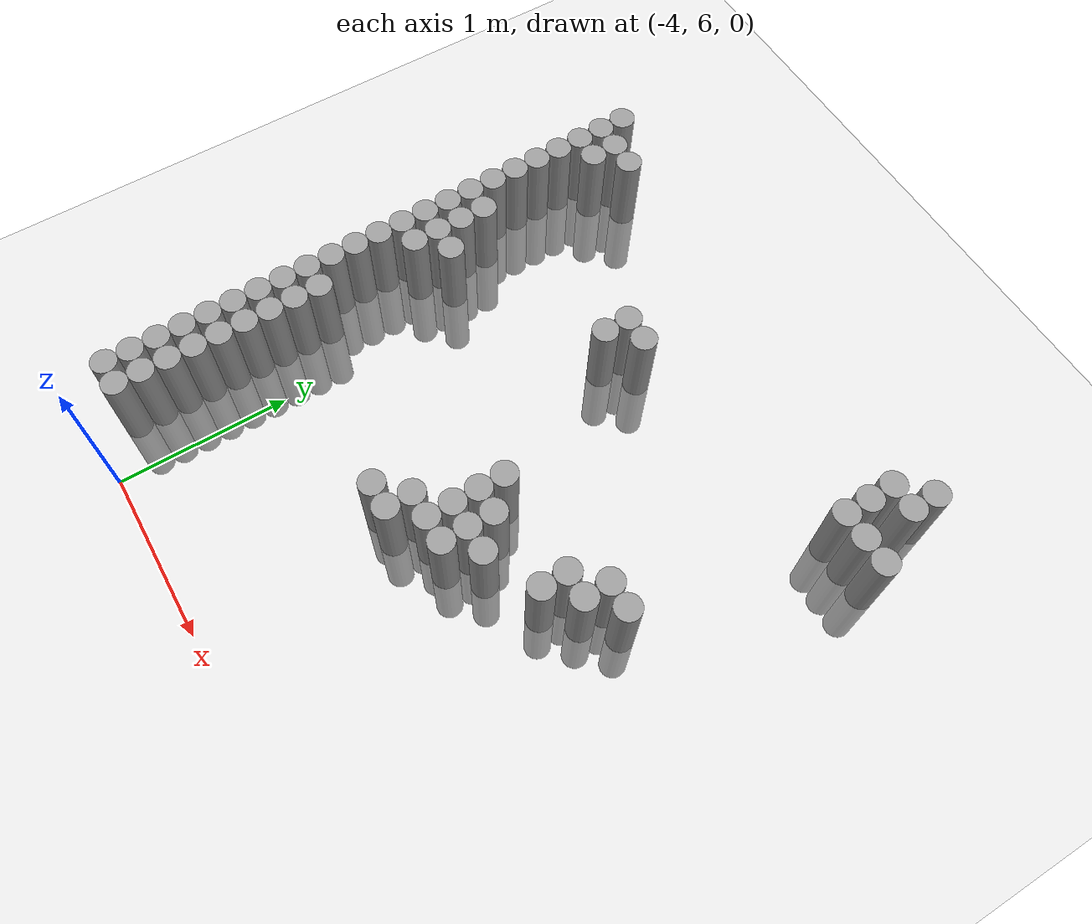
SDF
<sdf version="1.6">
 <world name="default">
  <model name="ground_plane">
   <static>1</static>
   <link name="link">
    <collision name="collision">
     <geometry><plane><normal>0 0 1</normal><size>100 100</size></plane></geometry>
     <surface><friction><ode><mu>100</mu><mu2>50</mu2></ode></friction></surface>
    </collision>
    <visual name="visual">
     <cast_shadows>0</cast_shadows>
     <geometry><plane><normal>0 0 1</normal><size>100 100</size></plane></geometry>
     <material>
      <script><uri>file://media/materials/scripts/gazebo.material</uri><name>Gazebo/Grey</name></script>
     </material>
    </visual>
   </link>
  </model>
  <model name="unit_cylinder_103">
   <pose>-4.425000 6.225000 0.000000 0.000000 0.000000 0.000000</pose>
   <link name="link">
    <inertial>
     <mass>1</mass>
     <inertia><ixx>0.145833</ixx><ixy>0</ixy><ixz>0</ixz><iyy>0.145833</iyy><iyz>0</iyz><izz>0.125</izz></inertia>
    </inertial>
    <collision name="collision">
     <geometry><cylinder><radius>0.075000</radius><length>1</length></cylinder></geometry>
    </collision>
    <visual name="visual">
     <geometry><cylinder><radius>0.075000</radius><length>1</length></cylinder></geometry>
     <material>
      <script><name>Gazebo/Grey</name><uri>file://media/materials/scripts/gazebo.material</uri></script>
     </material>
    </visual>
   </link>
  </model>
  <model name="unit_cylinder_104">
   <pose>-4.425000 6.375000 0.000000 0.000000 0.000000 0.000000</pose>
   <link name="link">
    <inertial>
     <mass>1</mass>
     <inertia><ixx>0.145833</ixx><ixy>0</ixy><ixz>0</ixz><iyy>0.145833</iyy><iyz>0</iyz><izz>0.125</izz></inertia>
    </inertial>
    <collision name="collision">
     <geometry><cylinder><radius>0.075000</radius><length>1</length></cylinder></geometry>
    </collision>
    <visual name="visual">
     <geometry><cylinder><radius>0.075000</radius><length>1</length></cylinder></geometry>
     <material>
      <script><name>Gazebo/Grey</name><uri>file://media/materials/scripts/gazebo.material</uri></script>
     </material>
    </visual>
   </link>
  </model>
  <model name="unit_cylinder_105">
   <pose>-4.425000 6.525000 0.000000 0.000000 0.000000 0.000000</pose>
   <link name="link">
    <inertial>
     <mass>1</mass>
     <inertia><ixx>0.145833</ixx><ixy>0</ixy><ixz>0</ixz><iyy>0.145833</iyy><iyz>0</iyz><izz>0.125</izz></inertia>
    </inertial>
    <collision name="collision">
     <geometry><cylinder><radius>0.075000</radius><length>1</length></cylinder></geometry>
    </collision>
    <visual name="visual">
     <geometry><cylinder><radius>0.075000</radius><length>1</length></cylinder></geometry>
     <material>
      <script><name>Gazebo/Grey</name><uri>file://media/materials/scripts/gazebo.material</uri></script>
     </material>
    </visual>
   </link>
  </model>
  <model name="unit_cylinder_106">
   <pose>-4.425000 6.675000 0.000000 0.000000 0.000000 0.000000</pose>
   <link name="link">
    <inertial>
     <mass>1</mass>
     <inertia><ixx>0.145833</ixx><ixy>0</ixy><ixz>0</ixz><iyy>0.145833</iyy><iyz>0</iyz><izz>0.125</izz></inertia>
    </inertial>
    <collision name="collision">
     <geometry><cylinder><radius>0.075000</radius><length>1</length></cylinder></geometry>
    </collision>
    <visual name="visual">
     <geometry><cylinder><radius>0.075000</radius><length>1</length></cylinder></geometry>
     <material>
      <script><name>Gazebo/Grey</name><uri>file://media/materials/scripts/gazebo.material</uri></script>
     </material>
    </visual>
   </link>
  </model>
  <model name="unit_cylinder_107">
   <pose>-4.425000 6.825000 0.000000 0.000000 0.000000 0.000000</pose>
   <link name="link">
    <inertial>
     <mass>1</mass>
     <inertia><ixx>0.145833</ixx><ixy>0</ixy><ixz>0</ixz><iyy>0.145833</iyy><iyz>0</iyz><izz>0.125</izz></inertia>
    </inertial>
    <collision name="collision">
     <geometry><cylinder><radius>0.075000</radius><length>1</length></cylinder></geometry>
    </collision>
    <visual name="visual">
     <geometry><cylinder><radius>0.075000</radius><length>1</length></cylinder></geometry>
     <material>
      <script><name>Gazebo/Grey</name><uri>file://media/materials/scripts/gazebo.material</uri></script>
     </material>
    </visual>
   </link>
  </model>
  <model name="unit_cylinder_108">
   <pose>-4.425000 6.975000 0.000000 0.000000 0.000000 0.000000</pose>
   <link name="link">
    <inertial>
     <mass>1</mass>
     <inertia><ixx>0.145833</ixx><ixy>0</ixy><ixz>0</ixz><iyy>0.145833</iyy><iyz>0</iyz><izz>0.125</izz></inertia>
    </inertial>
    <collision name="collision">
     <geometry><cylinder><radius>0.075000</radius><length>1</length></cylinder></geometry>
    </collision>
    <visual name="visual">
     <geometry><cylinder><radius>0.075000</radius><length>1</length></cylinder></geometry>
     <material>
      <script><name>Gazebo/Grey</name><uri>file://media/materials/scripts/gazebo.material</uri></script>
     </material>
    </visual>
   </link>
  </model>
  <model name="unit_cylinder_109">
   <pose>-4.425000 7.125000 0.000000 0.000000 0.000000 0.000000</pose>
   <link name="link">
    <inertial>
     <mass>1</mass>
     <inertia><ixx>0.145833</ixx><ixy>0</ixy><ixz>0</ixz><iyy>0.145833</iyy><iyz>0</iyz><izz>0.125</izz></inertia>
    </inertial>
    <collision name="collision">
     <geometry><cylinder><radius>0.075000</radius><length>1</length></cylinder></geometry>
    </collision>
    <visual name="visual">
     <geometry><cylinder><radius>0.075000</radius><length>1</length></cylinder></geometry>
     <material>
      <script><name>Gazebo/Grey</name><uri>file://media/materials/scripts/gazebo.material</uri></script>
     </material>
    </visual>
   </link>
  </model>
  <model name="unit_cylinder_110">
   <pose>-4.425000 7.275000 0.000000 0.000000 0.000000 0.000000</pose>
   <link name="link">
    <inertial>
     <mass>1</mass>
     <inertia><ixx>0.145833</ixx><ixy>0</ixy><ixz>0</ixz><iyy>0.145833</iyy><iyz>0</iyz><izz>0.125</izz></inertia>
    </inertial>
    <collision name="collision">
     <geometry><cylinder><radius>0.075000</radius><length>1</length></cylinder></geometry>
    </collision>
    <visual name="visual">
     <geometry><cylinder><radius>0.075000</radius><length>1</length></cylinder></geometry>
     <material>
      <script><name>Gazebo/Grey</name><uri>file://media/materials/scripts/gazebo.material</uri></script>
     </material>
    </visual>
   </link>
  </model>
  <model name="unit_cylinder_111">
   <pose>-4.425000 7.425000 0.000000 0.000000 0.000000 0.000000</pose>
   <link name="link">
    <inertial>
     <mass>1</mass>
     <inertia><ixx>0.145833</ixx><ixy>0</ixy><ixz>0</ixz><iyy>0.145833</iyy><iyz>0</iyz><izz>0.125</izz></inertia>
    </inertial>
    <collision name="collision">
     <geometry><cylinder><radius>0.075000</radius><length>1</length></cylinder></geometry>
    </collision>
    <visual name="visual">
     <geometry><cylinder><radius>0.075000</radius><length>1</length></cylinder></geometry>
     <material>
      <script><name>Gazebo/Grey</name><uri>file://media/materials/scripts/gazebo.material</uri></script>
     </material>
    </visual>
   </link>
  </model>
  <model name="unit_cylinder_112">
   <pose>-4.425000 7.575000 0.000000 0.000000 0.000000 0.000000</pose>
   <link name="link">
    <inertial>
     <mass>1</mass>
     <inertia><ixx>0.145833</ixx><ixy>0</ixy><ixz>0</ixz><iyy>0.145833</iyy><iyz>0</iyz><izz>0.125</izz></inertia>
    </inertial>
    <collision name="collision">
     <geometry><cylinder><radius>0.075000</radius><length>1</length></cylinder></geometry>
    </collision>
    <visual name="visual">
     <geometry><cylinder><radius>0.075000</radius><length>1</length></cylinder></geometry>
     <material>
      <script><name>Gazebo/Grey</name><uri>file://media/materials/scripts/gazebo.material</uri></script>
     </material>
    </visual>
   </link>
  </model>
  <model name="unit_cylinder_113">
   <pose>-4.425000 7.725000 0.000000 0.000000 0.000000 0.000000</pose>
   <link name="link">
    <inertial>
     <mass>1</mass>
     <inertia><ixx>0.145833</ixx><ixy>0</ixy><ixz>0</ixz><iyy>0.145833</iyy><iyz>0</iyz><izz>0.125</izz></inertia>
    </inertial>
    <collision name="collision">
     <geometry><cylinder><radius>0.075000</radius><length>1</length></cylinder></geometry>
    </collision>
    <visual name="visual">
     <geometry><cylinder><radius>0.075000</radius><length>1</length></cylinder></geometry>
     <material>
      <script><name>Gazebo/Grey</name><uri>file://media/materials/scripts/gazebo.material</uri></script>
     </material>
    </visual>
   </link>
  </model>
  <model name="unit_cylinder_114">
   <pose>-4.425000 7.875000 0.000000 0.000000 0.000000 0.000000</pose>
   <link name="link">
    <inertial>
     <mass>1</mass>
     <inertia><ixx>0.145833</ixx><ixy>0</ixy><ixz>0</ixz><iyy>0.145833</iyy><iyz>0</iyz><izz>0.125</izz></inertia>
    </inertial>
    <collision name="collision">
     <geometry><cylinder><radius>0.075000</radius><length>1</length></cylinder></geometry>
    </collision>
    <visual name="visual">
     <geometry><cylinder><radius>0.075000</radius><length>1</length></cylinder></geometry>
     <material>
      <script><name>Gazebo/Grey</name><uri>file://media/materials/scripts/gazebo.material</uri></script>
     </material>
    </visual>
   </link>
  </model>
  <model name="unit_cylinder_115">
   <pose>-4.425000 8.025000 0.000000 0.000000 0.000000 0.000000</pose>
   <link name="link">
    <inertial>
     <mass>1</mass>
     <inertia><ixx>0.145833</ixx><ixy>0</ixy><ixz>0</ixz><iyy>0.145833</iyy><iyz>0</iyz><izz>0.125</izz></inertia>
    </inertial>
    <collision name="collision">
     <geometry><cylinder><radius>0.075000</radius><length>1</length></cylinder></geometry>
    </collision>
    <visual name="visual">
     <geometry><cylinder><radius>0.075000</radius><length>1</length></cylinder></geometry>
     <material>
      <script><name>Gazebo/Grey</name><uri>file://media/materials/scripts/gazebo.material</uri></script>
     </material>
    </visual>
   </link>
  </model>
  <model name="unit_cylinder_116">
   <pose>-4.425000 8.175000 0.000000 0.000000 0.000000 0.000000</pose>
   <link name="link">
    <inertial>
     <mass>1</mass>
     <inertia><ixx>0.145833</ixx><ixy>0</ixy><ixz>0</ixz><iyy>0.145833</iyy><iyz>0</iyz><izz>0.125</izz></inertia>
    </inertial>
    <collision name="collision">
     <geometry><cylinder><radius>0.075000</radius><length>1</length></cylinder></geometry>
    </collision>
    <visual name="visual">
     <geometry><cylinder><radius>0.075000</radius><length>1</length></cylinder></geometry>
     <material>
      <script><name>Gazebo/Grey</name><uri>file://media/materials/scripts/gazebo.material</uri></script>
     </material>
    </visual>
   </link>
  </model>
  <model name="unit_cylinder_117">
   <pose>-4.425000 8.325000 0.000000 0.000000 0.000000 0.000000</pose>
   <link name="link">
    <inertial>
     <mass>1</mass>
     <inertia><ixx>0.145833</ixx><ixy>0</ixy><ixz>0</ixz><iyy>0.145833</iyy><iyz>0</iyz><izz>0.125</izz></inertia>
    </inertial>
    <collision name="collision">
     <geometry><cylinder><radius>0.075000</radius><length>1</length></cylinder></geometry>
    </collision>
    <visual name="visual">
     <geometry><cylinder><radius>0.075000</radius><length>1</length></cylinder></geometry>
     <material>
      <script><name>Gazebo/Grey</name><uri>file://media/materials/scripts/gazebo.material</uri></script>
     </material>
    </visual>
   </link>
  </model>
  <model name="unit_cylinder_118">
   <pose>-4.425000 8.475000 0.000000 0.000000 0.000000 0.000000</pose>
   <link name="link">
    <inertial>
     <mass>1</mass>
     <inertia><ixx>0.145833</ixx><ixy>0</ixy><ixz>0</ixz><iyy>0.145833</iyy><iyz>0</iyz><izz>0.125</izz></inertia>
    </inertial>
    <collision name="collision">
     <geometry><cylinder><radius>0.075000</radius><length>1</length></cylinder></geometry>
    </collision>
    <visual name="visual">
     <geometry><cylinder><radius>0.075000</radius><length>1</length></cylinder></geometry>
     <material>
      <script><name>Gazebo/Grey</name><uri>file://media/materials/scripts/gazebo.material</uri></script>
     </material>
    </visual>
   </link>
  </model>
  <model name="unit_cylinder_119">
   <pose>-4.425000 8.625000 0.000000 0.000000 0.000000 0.000000</pose>
   <link name="link">
    <inertial>
     <mass>1</mass>
     <inertia><ixx>0.145833</ixx><ixy>0</ixy><ixz>0</ixz><iyy>0.145833</iyy><iyz>0</iyz><izz>0.125</izz></inertia>
    </inertial>
    <collision name="collision">
     <geometry><cylinder><radius>0.075000</radius><length>1</length></cylinder></geometry>
    </collision>
    <visual name="visual">
     <geometry><cylinder><radius>0.075000</radius><length>1</length></cylinder></geometry>
     <material>
      <script><name>Gazebo/Grey</name><uri>file://media/materials/scripts/gazebo.material</uri></script>
     </material>
    </visual>
   </link>
  </model>
  <model name="unit_cylinder_120">
   <pose>-4.425000 8.775000 0.000000 0.000000 0.000000 0.000000</pose>
   <link name="link">
    <inertial>
     <mass>1</mass>
     <inertia><ixx>0.145833</ixx><ixy>0</ixy><ixz>0</ixz><iyy>0.145833</iyy><iyz>0</iyz><izz>0.125</izz></inertia>
    </inertial>
    <collision name="collision">
     <geometry><cylinder><radius>0.075000</radius><length>1</length></cylinder></geometry>
    </collision>
    <visual name="visual">
     <geometry><cylinder><radius>0.075000</radius><length>1</length></cylinder></geometry>
     <material>
      <script><name>Gazebo/Grey</name><uri>file://media/materials/scripts/gazebo.material</uri></script>
     </material>
    </visual>
   </link>
  </model>
  <model name="unit_cylinder_121">
   <pose>-4.425000 8.925000 0.000000 0.000000 0.000000 0.000000</pose>
   <link name="link">
    <inertial>
     <mass>1</mass>
     <inertia><ixx>0.145833</ixx><ixy>0</ixy><ixz>0</ixz><iyy>0.145833</iyy><iyz>0</iyz><izz>0.125</izz></inertia>
    </inertial>
    <collision name="collision">
     <geometry><cylinder><radius>0.075000</radius><length>1</length></cylinder></geometry>
    </collision>
    <visual name="visual">
     <geometry><cylinder><radius>0.075000</radius><length>1</length></cylinder></geometry>
     <material>
      <script><name>Gazebo/Grey</name><uri>file://media/materials/scripts/gazebo.material</uri></script>
     </material>
    </visual>
   </link>
  </model>
  <model name="unit_cylinder_122">
   <pose>-4.425000 9.075000 0.000000 0.000000 0.000000 0.000000</pose>
   <link name="link">
    <inertial>
     <mass>1</mass>
     <inertia><ixx>0.145833</ixx><ixy>0</ixy><ixz>0</ixz><iyy>0.145833</iyy><iyz>0</iyz><izz>0.125</izz></inertia>
    </inertial>
    <collision name="collision">
     <geometry><cylinder><radius>0.075000</radius><length>1</length></cylinder></geometry>
    </collision>
    <visual name="visual">
     <geometry><cylinder><radius>0.075000</radius><length>1</length></cylinder></geometry>
     <material>
      <script><name>Gazebo/Grey</name><uri>file://media/materials/scripts/gazebo.material</uri></script>
     </material>
    </visual>
   </link>
  </model>
  <model name="unit_cylinder_123">
   <pose>-4.425000 9.225000 0.000000 0.000000 0.000000 0.000000</pose>
   <link name="link">
    <inertial>
     <mass>1</mass>
     <inertia><ixx>0.145833</ixx><ixy>0</ixy><ixz>0</ixz><iyy>0.145833</iyy><iyz>0</iyz><izz>0.125</izz></inertia>
    </inertial>
    <collision name="collision">
     <geometry><cylinder><radius>0.075000</radius><length>1</length></cylinder></geometry>
    </collision>
    <visual name="visual">
     <geometry><cylinder><radius>0.075000</radius><length>1</length></cylinder></geometry>
     <material>
      <script><name>Gazebo/Grey</name><uri>file://media/materials/scripts/gazebo.material</uri></script>
     </material>
    </visual>
   </link>
  </model>
  <model name="unit_cylinder_124">
   <pose>-4.425000 9.375000 0.000000 0.000000 0.000000 0.000000</pose>
   <link name="link">
    <inertial>
     <mass>1</mass>
     <inertia><ixx>0.145833</ixx><ixy>0</ixy><ixz>0</ixz><iyy>0.145833</iyy><iyz>0</iyz><izz>0.125</izz></inertia>
    </inertial>
    <collision name="collision">
     <geometry><cylinder><radius>0.075000</radius><length>1</length></cylinder></geometry>
    </collision>
    <visual name="visual">
     <geometry><cylinder><radius>0.075000</radius><length>1</length></cylinder></geometry>
     <material>
      <script><name>Gazebo/Grey</name><uri>file://media/materials/scripts/gazebo.material</uri></script>
     </material>
    </visual>
   </link>
  </model>
  <model name="unit_cylinder_125">
   <pose>-4.425000 9.525000 0.000000 0.000000 0.000000 0.000000</pose>
   <link name="link">
    <inertial>
     <mass>1</mass>
     <inertia><ixx>0.145833</ixx><ixy>0</ixy><ixz>0</ixz><iyy>0.145833</iyy><iyz>0</iyz><izz>0.125</izz></inertia>
    </inertial>
    <collision name="collision">
     <geometry><cylinder><radius>0.075000</radius><length>1</length></cylinder></geometry>
    </collision>
    <visual name="visual">
     <geometry><cylinder><radius>0.075000</radius><length>1</length></cylinder></geometry>
     <material>
      <script><name>Gazebo/Grey</name><uri>file://media/materials/scripts/gazebo.material</uri></script>
     </material>
    </visual>
   </link>
  </model>
  <model name="unit_cylinder_129">
   <pose>-4.275000 6.225000 0.000000 0.000000 0.000000 0.000000</pose>
   <link name="link">
    <inertial>
     <mass>1</mass>
     <inertia><ixx>0.145833</ixx><ixy>0</ixy><ixz>0</ixz><iyy>0.145833</iyy><iyz>0</iyz><izz>0.125</izz></inertia>
    </inertial>
    <collision name="collision">
     <geometry><cylinder><radius>0.075000</radius><length>1</length></cylinder></geometry>
    </collision>
    <visual name="visual">
     <geometry><cylinder><radius>0.075000</radius><length>1</length></cylinder></geometry>
     <material>
      <script><name>Gazebo/Grey</name><uri>file://media/materials/scripts/gazebo.material</uri></script>
     </material>
    </visual>
   </link>
  </model>
  <model name="unit_cylinder_130">
   <pose>-4.275000 6.375000 0.000000 0.000000 0.000000 0.000000</pose>
   <link name="link">
    <inertial>
     <mass>1</mass>
     <inertia><ixx>0.145833</ixx><ixy>0</ixy><ixz>0</ixz><iyy>0.145833</iyy><iyz>0</iyz><izz>0.125</izz></inertia>
    </inertial>
    <collision name="collision">
     <geometry><cylinder><radius>0.075000</radius><length>1</length></cylinder></geometry>
    </collision>
    <visual name="visual">
     <geometry><cylinder><radius>0.075000</radius><length>1</length></cylinder></geometry>
     <material>
      <script><name>Gazebo/Grey</name><uri>file://media/materials/scripts/gazebo.material</uri></script>
     </material>
    </visual>
   </link>
  </model>
  <model name="unit_cylinder_131">
   <pose>-4.275000 6.525000 0.000000 0.000000 0.000000 0.000000</pose>
   <link name="link">
    <inertial>
     <mass>1</mass>
     <inertia><ixx>0.145833</ixx><ixy>0</ixy><ixz>0</ixz><iyy>0.145833</iyy><iyz>0</iyz><izz>0.125</izz></inertia>
    </inertial>
    <collision name="collision">
     <geometry><cylinder><radius>0.075000</radius><length>1</length></cylinder></geometry>
    </collision>
    <visual name="visual">
     <geometry><cylinder><radius>0.075000</radius><length>1</length></cylinder></geometry>
     <material>
      <script><name>Gazebo/Grey</name><uri>file://media/materials/scripts/gazebo.material</uri></script>
     </material>
    </visual>
   </link>
  </model>
  <model name="unit_cylinder_132">
   <pose>-4.275000 6.675000 0.000000 0.000000 0.000000 0.000000</pose>
   <link name="link">
    <inertial>
     <mass>1</mass>
     <inertia><ixx>0.145833</ixx><ixy>0</ixy><ixz>0</ixz><iyy>0.145833</iyy><iyz>0</iyz><izz>0.125</izz></inertia>
    </inertial>
    <collision name="collision">
     <geometry><cylinder><radius>0.075000</radius><length>1</length></cylinder></geometry>
    </collision>
    <visual name="visual">
     <geometry><cylinder><radius>0.075000</radius><length>1</length></cylinder></geometry>
     <material>
      <script><name>Gazebo/Grey</name><uri>file://media/materials/scripts/gazebo.material</uri></script>
     </material>
    </visual>
   </link>
  </model>
  <model name="unit_cylinder_133">
   <pose>-4.275000 6.825000 0.000000 0.000000 0.000000 0.000000</pose>
   <link name="link">
    <inertial>
     <mass>1</mass>
     <inertia><ixx>0.145833</ixx><ixy>0</ixy><ixz>0</ixz><iyy>0.145833</iyy><iyz>0</iyz><izz>0.125</izz></inertia>
    </inertial>
    <collision name="collision">
     <geometry><cylinder><radius>0.075000</radius><length>1</length></cylinder></geometry>
    </collision>
    <visual name="visual">
     <geometry><cylinder><radius>0.075000</radius><length>1</length></cylinder></geometry>
     <material>
      <script><name>Gazebo/Grey</name><uri>file://media/materials/scripts/gazebo.material</uri></script>
     </material>
    </visual>
   </link>
  </model>
  <model name="unit_cylinder_134">
   <pose>-4.275000 6.975000 0.000000 0.000000 0.000000 0.000000</pose>
   <link name="link">
    <inertial>
     <mass>1</mass>
     <inertia><ixx>0.145833</ixx><ixy>0</ixy><ixz>0</ixz><iyy>0.145833</iyy><iyz>0</iyz><izz>0.125</izz></inertia>
    </inertial>
    <collision name="collision">
     <geometry><cylinder><radius>0.075000</radius><length>1</length></cylinder></geometry>
    </collision>
    <visual name="visual">
     <geometry><cylinder><radius>0.075000</radius><length>1</length></cylinder></geometry>
     <material>
      <script><name>Gazebo/Grey</name><uri>file://media/materials/scripts/gazebo.material</uri></script>
     </material>
    </visual>
   </link>
  </model>
  <model name="unit_cylinder_135">
   <pose>-4.275000 7.125000 0.000000 0.000000 0.000000 0.000000</pose>
   <link name="link">
    <inertial>
     <mass>1</mass>
     <inertia><ixx>0.145833</ixx><ixy>0</ixy><ixz>0</ixz><iyy>0.145833</iyy><iyz>0</iyz><izz>0.125</izz></inertia>
    </inertial>
    <collision name="collision">
     <geometry><cylinder><radius>0.075000</radius><length>1</length></cylinder></geometry>
    </collision>
    <visual name="visual">
     <geometry><cylinder><radius>0.075000</radius><length>1</length></cylinder></geometry>
     <material>
      <script><name>Gazebo/Grey</name><uri>file://media/materials/scripts/gazebo.material</uri></script>
     </material>
    </visual>
   </link>
  </model>
  <model name="unit_cylinder_136">
   <pose>-4.275000 7.275000 0.000000 0.000000 0.000000 0.000000</pose>
   <link name="link">
    <inertial>
     <mass>1</mass>
     <inertia><ixx>0.145833</ixx><ixy>0</ixy><ixz>0</ixz><iyy>0.145833</iyy><iyz>0</iyz><izz>0.125</izz></inertia>
    </inertial>
    <collision name="collision">
     <geometry><cylinder><radius>0.075000</radius><length>1</length></cylinder></geometry>
    </collision>
    <visual name="visual">
     <geometry><cylinder><radius>0.075000</radius><length>1</length></cylinder></geometry>
     <material>
      <script><name>Gazebo/Grey</name><uri>file://media/materials/scripts/gazebo.material</uri></script>
     </material>
    </visual>
   </link>
  </model>
  <model name="unit_cylinder_137">
   <pose>-4.275000 7.425000 0.000000 0.000000 0.000000 0.000000</pose>
   <link name="link">
    <inertial>
     <mass>1</mass>
     <inertia><ixx>0.145833</ixx><ixy>0</ixy><ixz>0</ixz><iyy>0.145833</iyy><iyz>0</iyz><izz>0.125</izz></inertia>
    </inertial>
    <collision name="collision">
     <geometry><cylinder><radius>0.075000</radius><length>1</length></cylinder></geometry>
    </collision>
    <visual name="visual">
     <geometry><cylinder><radius>0.075000</radius><length>1</length></cylinder></geometry>
     <material>
      <script><name>Gazebo/Grey</name><uri>file://media/materials/scripts/gazebo.material</uri></script>
     </material>
    </visual>
   </link>
  </model>
  <model name="unit_cylinder_138">
   <pose>-4.275000 8.025000 0.000000 0.000000 0.000000 0.000000</pose>
   <link name="link">
    <inertial>
     <mass>1</mass>
     <inertia><ixx>0.145833</ixx><ixy>0</ixy><ixz>0</ixz><iyy>0.145833</iyy><iyz>0</iyz><izz>0.125</izz></inertia>
    </inertial>
    <collision name="collision">
     <geometry><cylinder><radius>0.075000</radius><length>1</length></cylinder></geometry>
    </collision>
    <visual name="visual">
     <geometry><cylinder><radius>0.075000</radius><length>1</length></cylinder></geometry>
     <material>
      <script><name>Gazebo/Grey</name><uri>file://media/materials/scripts/gazebo.material</uri></script>
     </material>
    </visual>
   </link>
  </model>
  <model name="unit_cylinder_139">
   <pose>-4.275000 8.175000 0.000000 0.000000 0.000000 0.000000</pose>
   <link name="link">
    <inertial>
     <mass>1</mass>
     <inertia><ixx>0.145833</ixx><ixy>0</ixy><ixz>0</ixz><iyy>0.145833</iyy><iyz>0</iyz><izz>0.125</izz></inertia>
    </inertial>
    <collision name="collision">
     <geometry><cylinder><radius>0.075000</radius><length>1</length></cylinder></geometry>
    </collision>
    <visual name="visual">
     <geometry><cylinder><radius>0.075000</radius><length>1</length></cylinder></geometry>
     <material>
      <script><name>Gazebo/Grey</name><uri>file://media/materials/scripts/gazebo.material</uri></script>
     </material>
    </visual>
   </link>
  </model>
  <model name="unit_cylinder_140">
   <pose>-4.275000 8.325000 0.000000 0.000000 0.000000 0.000000</pose>
   <link name="link">
    <inertial>
     <mass>1</mass>
     <inertia><ixx>0.145833</ixx><ixy>0</ixy><ixz>0</ixz><iyy>0.145833</iyy><iyz>0</iyz><izz>0.125</izz></inertia>
    </inertial>
    <collision name="collision">
     <geometry><cylinder><radius>0.075000</radius><length>1</length></cylinder></geometry>
    </collision>
    <visual name="visual">
     <geometry><cylinder><radius>0.075000</radius><length>1</length></cylinder></geometry>
     <material>
      <script><name>Gazebo/Grey</name><uri>file://media/materials/scripts/gazebo.material</uri></script>
     </material>
    </visual>
   </link>
  </model>
  <model name="unit_cylinder_141">
   <pose>-4.275000 8.475000 0.000000 0.000000 0.000000 0.000000</pose>
   <link name="link">
    <inertial>
     <mass>1</mass>
     <inertia><ixx>0.145833</ixx><ixy>0</ixy><ixz>0</ixz><iyy>0.145833</iyy><iyz>0</iyz><izz>0.125</izz></inertia>
    </inertial>
    <collision name="collision">
     <geometry><cylinder><radius>0.075000</radius><length>1</length></cylinder></geometry>
    </collision>
    <visual name="visual">
     <geometry><cylinder><radius>0.075000</radius><length>1</length></cylinder></geometry>
     <material>
      <script><name>Gazebo/Grey</name><uri>file://media/materials/scripts/gazebo.material</uri></script>
     </material>
    </visual>
   </link>
  </model>
  <model name="unit_cylinder_142">
   <pose>-4.275000 9.225000 0.000000 0.000000 0.000000 0.000000</pose>
   <link name="link">
    <inertial>
     <mass>1</mass>
     <inertia><ixx>0.145833</ixx><ixy>0</ixy><ixz>0</ixz><iyy>0.145833</iyy><iyz>0</iyz><izz>0.125</izz></inertia>
    </inertial>
    <collision name="collision">
     <geometry><cylinder><radius>0.075000</radius><length>1</length></cylinder></geometry>
    </collision>
    <visual name="visual">
     <geometry><cylinder><radius>0.075000</radius><length>1</length></cylinder></geometry>
     <material>
      <script><name>Gazebo/Grey</name><uri>file://media/materials/scripts/gazebo.material</uri></script>
     </material>
    </visual>
   </link>
  </model>
  <model name="unit_cylinder_143">
   <pose>-4.275000 9.375000 0.000000 0.000000 0.000000 0.000000</pose>
   <link name="link">
    <inertial>
     <mass>1</mass>
     <inertia><ixx>0.145833</ixx><ixy>0</ixy><ixz>0</ixz><iyy>0.145833</iyy><iyz>0</iyz><izz>0.125</izz></inertia>
    </inertial>
    <collision name="collision">
     <geometry><cylinder><radius>0.075000</radius><length>1</length></cylinder></geometry>
    </collision>
    <visual name="visual">
     <geometry><cylinder><radius>0.075000</radius><length>1</length></cylinder></geometry>
     <material>
      <script><name>Gazebo/Grey</name><uri>file://media/materials/scripts/gazebo.material</uri></script>
     </material>
    </visual>
   </link>
  </model>
  <model name="unit_cylinder_149">
   <pose>-4.125000 8.175000 0.000000 0.000000 0.000000 0.000000</pose>
   <link name="link">
    <inertial>
     <mass>1</mass>
     <inertia><ixx>0.145833</ixx><ixy>0</ixy><ixz>0</ixz><iyy>0.145833</iyy><iyz>0</iyz><izz>0.125</izz></inertia>
    </inertial>
    <collision name="collision">
     <geometry><cylinder><radius>0.075000</radius><length>1</length></cylinder></geometry>
    </collision>
    <visual name="visual">
     <geometry><cylinder><radius>0.075000</radius><length>1</length></cylinder></geometry>
     <material>
      <script><name>Gazebo/Grey</name><uri>file://media/materials/scripts/gazebo.material</uri></script>
     </material>
    </visual>
   </link>
  </model>
  <model name="unit_cylinder_150">
   <pose>-4.125000 9.375000 0.000000 0.000000 0.000000 0.000000</pose>
   <link name="link">
    <inertial>
     <mass>1</mass>
     <inertia><ixx>0.145833</ixx><ixy>0</ixy><ixz>0</ixz><iyy>0.145833</iyy><iyz>0</iyz><izz>0.125</izz></inertia>
    </inertial>
    <collision name="collision">
     <geometry><cylinder><radius>0.075000</radius><length>1</length></cylinder></geometry>
    </collision>
    <visual name="visual">
     <geometry><cylinder><radius>0.075000</radius><length>1</length></cylinder></geometry>
     <material>
      <script><name>Gazebo/Grey</name><uri>file://media/materials/scripts/gazebo.material</uri></script>
     </material>
    </visual>
   </link>
  </model>
  <model name="unit_cylinder_159">
   <pose>-3.225000 8.625000 0.000000 0.000000 0.000000 0.000000</pose>
   <link name="link">
    <inertial>
     <mass>1</mass>
     <inertia><ixx>0.145833</ixx><ixy>0</ixy><ixz>0</ixz><iyy>0.145833</iyy><iyz>0</iyz><izz>0.125</izz></inertia>
    </inertial>
    <collision name="collision">
     <geometry><cylinder><radius>0.075000</radius><length>1</length></cylinder></geometry>
    </collision>
    <visual name="visual">
     <geometry><cylinder><radius>0.075000</radius><length>1</length></cylinder></geometry>
     <material>
      <script><name>Gazebo/Grey</name><uri>file://media/materials/scripts/gazebo.material</uri></script>
     </material>
    </visual>
   </link>
  </model>
  <model name="unit_cylinder_160">
   <pose>-3.225000 8.775000 0.000000 0.000000 0.000000 0.000000</pose>
   <link name="link">
    <inertial>
     <mass>1</mass>
     <inertia><ixx>0.145833</ixx><ixy>0</ixy><ixz>0</ixz><iyy>0.145833</iyy><iyz>0</iyz><izz>0.125</izz></inertia>
    </inertial>
    <collision name="collision">
     <geometry><cylinder><radius>0.075000</radius><length>1</length></cylinder></geometry>
    </collision>
    <visual name="visual">
     <geometry><cylinder><radius>0.075000</radius><length>1</length></cylinder></geometry>
     <material>
      <script><name>Gazebo/Grey</name><uri>file://media/materials/scripts/gazebo.material</uri></script>
     </material>
    </visual>
   </link>
  </model>
  <model name="unit_cylinder_161">
   <pose>-3.075000 7.125000 0.000000 0.000000 0.000000 0.000000</pose>
   <link name="link">
    <inertial>
     <mass>1</mass>
     <inertia><ixx>0.145833</ixx><ixy>0</ixy><ixz>0</ixz><iyy>0.145833</iyy><iyz>0</iyz><izz>0.125</izz></inertia>
    </inertial>
    <collision name="collision">
     <geometry><cylinder><radius>0.075000</radius><length>1</length></cylinder></geometry>
    </collision>
    <visual name="visual">
     <geometry><cylinder><radius>0.075000</radius><length>1</length></cylinder></geometry>
     <material>
      <script><name>Gazebo/Grey</name><uri>file://media/materials/scripts/gazebo.material</uri></script>
     </material>
    </visual>
   </link>
  </model>
  <model name="unit_cylinder_162">
   <pose>-3.075000 8.775000 0.000000 0.000000 0.000000 0.000000</pose>
   <link name="link">
    <inertial>
     <mass>1</mass>
     <inertia><ixx>0.145833</ixx><ixy>0</ixy><ixz>0</ixz><iyy>0.145833</iyy><iyz>0</iyz><izz>0.125</izz></inertia>
    </inertial>
    <collision name="collision">
     <geometry><cylinder><radius>0.075000</radius><length>1</length></cylinder></geometry>
    </collision>
    <visual name="visual">
     <geometry><cylinder><radius>0.075000</radius><length>1</length></cylinder></geometry>
     <material>
      <script><name>Gazebo/Grey</name><uri>file://media/materials/scripts/gazebo.material</uri></script>
     </material>
    </visual>
   </link>
  </model>
  <model name="unit_cylinder_163">
   <pose>-2.925000 7.125000 0.000000 0.000000 0.000000 0.000000</pose>
   <link name="link">
    <inertial>
     <mass>1</mass>
     <inertia><ixx>0.145833</ixx><ixy>0</ixy><ixz>0</ixz><iyy>0.145833</iyy><iyz>0</iyz><izz>0.125</izz></inertia>
    </inertial>
    <collision name="collision">
     <geometry><cylinder><radius>0.075000</radius><length>1</length></cylinder></geometry>
    </collision>
    <visual name="visual">
     <geometry><cylinder><radius>0.075000</radius><length>1</length></cylinder></geometry>
     <material>
      <script><name>Gazebo/Grey</name><uri>file://media/materials/scripts/gazebo.material</uri></script>
     </material>
    </visual>
   </link>
  </model>
  <model name="unit_cylinder_164">
   <pose>-2.925000 7.275000 0.000000 0.000000 0.000000 0.000000</pose>
   <link name="link">
    <inertial>
     <mass>1</mass>
     <inertia><ixx>0.145833</ixx><ixy>0</ixy><ixz>0</ixz><iyy>0.145833</iyy><iyz>0</iyz><izz>0.125</izz></inertia>
    </inertial>
    <collision name="collision">
     <geometry><cylinder><radius>0.075000</radius><length>1</length></cylinder></geometry>
    </collision>
    <visual name="visual">
     <geometry><cylinder><radius>0.075000</radius><length>1</length></cylinder></geometry>
     <material>
      <script><name>Gazebo/Grey</name><uri>file://media/materials/scripts/gazebo.material</uri></script>
     </material>
    </visual>
   </link>
  </model>
  <model name="unit_cylinder_167">
   <pose>-2.775000 7.275000 0.000000 0.000000 0.000000 0.000000</pose>
   <link name="link">
    <inertial>
     <mass>1</mass>
     <inertia><ixx>0.145833</ixx><ixy>0</ixy><ixz>0</ixz><iyy>0.145833</iyy><iyz>0</iyz><izz>0.125</izz></inertia>
    </inertial>
    <collision name="collision">
     <geometry><cylinder><radius>0.075000</radius><length>1</length></cylinder></geometry>
    </collision>
    <visual name="visual">
     <geometry><cylinder><radius>0.075000</radius><length>1</length></cylinder></geometry>
     <material>
      <script><name>Gazebo/Grey</name><uri>file://media/materials/scripts/gazebo.material</uri></script>
     </material>
    </visual>
   </link>
  </model>
  <model name="unit_cylinder_168">
   <pose>-2.775000 7.425000 0.000000 0.000000 0.000000 0.000000</pose>
   <link name="link">
    <inertial>
     <mass>1</mass>
     <inertia><ixx>0.145833</ixx><ixy>0</ixy><ixz>0</ixz><iyy>0.145833</iyy><iyz>0</iyz><izz>0.125</izz></inertia>
    </inertial>
    <collision name="collision">
     <geometry><cylinder><radius>0.075000</radius><length>1</length></cylinder></geometry>
    </collision>
    <visual name="visual">
     <geometry><cylinder><radius>0.075000</radius><length>1</length></cylinder></geometry>
     <material>
      <script><name>Gazebo/Grey</name><uri>file://media/materials/scripts/gazebo.material</uri></script>
     </material>
    </visual>
   </link>
  </model>
  <model name="unit_cylinder_169">
   <pose>-2.775000 7.575000 0.000000 0.000000 0.000000 0.000000</pose>
   <link name="link">
    <inertial>
     <mass>1</mass>
     <inertia><ixx>0.145833</ixx><ixy>0</ixy><ixz>0</ixz><iyy>0.145833</iyy><iyz>0</iyz><izz>0.125</izz></inertia>
    </inertial>
    <collision name="collision">
     <geometry><cylinder><radius>0.075000</radius><length>1</length></cylinder></geometry>
    </collision>
    <visual name="visual">
     <geometry><cylinder><radius>0.075000</radius><length>1</length></cylinder></geometry>
     <material>
      <script><name>Gazebo/Grey</name><uri>file://media/materials/scripts/gazebo.material</uri></script>
     </material>
    </visual>
   </link>
  </model>
  <model name="unit_cylinder_170">
   <pose>-2.775000 7.725000 0.000000 0.000000 0.000000 0.000000</pose>
   <link name="link">
    <inertial>
     <mass>1</mass>
     <inertia><ixx>0.145833</ixx><ixy>0</ixy><ixz>0</ixz><iyy>0.145833</iyy><iyz>0</iyz><izz>0.125</izz></inertia>
    </inertial>
    <collision name="collision">
     <geometry><cylinder><radius>0.075000</radius><length>1</length></cylinder></geometry>
    </collision>
    <visual name="visual">
     <geometry><cylinder><radius>0.075000</radius><length>1</length></cylinder></geometry>
     <material>
      <script><name>Gazebo/Grey</name><uri>file://media/materials/scripts/gazebo.material</uri></script>
     </material>
    </visual>
   </link>
  </model>
  <model name="unit_cylinder_172">
   <pose>-2.625000 7.275000 0.000000 0.000000 0.000000 0.000000</pose>
   <link name="link">
    <inertial>
     <mass>1</mass>
     <inertia><ixx>0.145833</ixx><ixy>0</ixy><ixz>0</ixz><iyy>0.145833</iyy><iyz>0</iyz><izz>0.125</izz></inertia>
    </inertial>
    <collision name="collision">
     <geometry><cylinder><radius>0.075000</radius><length>1</length></cylinder></geometry>
    </collision>
    <visual name="visual">
     <geometry><cylinder><radius>0.075000</radius><length>1</length></cylinder></geometry>
     <material>
      <script><name>Gazebo/Grey</name><uri>file://media/materials/scripts/gazebo.material</uri></script>
     </material>
    </visual>
   </link>
  </model>
  <model name="unit_cylinder_173">
   <pose>-2.625000 7.425000 0.000000 0.000000 0.000000 0.000000</pose>
   <link name="link">
    <inertial>
     <mass>1</mass>
     <inertia><ixx>0.145833</ixx><ixy>0</ixy><ixz>0</ixz><iyy>0.145833</iyy><iyz>0</iyz><izz>0.125</izz></inertia>
    </inertial>
    <collision name="collision">
     <geometry><cylinder><radius>0.075000</radius><length>1</length></cylinder></geometry>
    </collision>
    <visual name="visual">
     <geometry><cylinder><radius>0.075000</radius><length>1</length></cylinder></geometry>
     <material>
      <script><name>Gazebo/Grey</name><uri>file://media/materials/scripts/gazebo.material</uri></script>
     </material>
    </visual>
   </link>
  </model>
  <model name="unit_cylinder_174">
   <pose>-2.625000 7.575000 0.000000 0.000000 0.000000 0.000000</pose>
   <link name="link">
    <inertial>
     <mass>1</mass>
     <inertia><ixx>0.145833</ixx><ixy>0</ixy><ixz>0</ixz><iyy>0.145833</iyy><iyz>0</iyz><izz>0.125</izz></inertia>
    </inertial>
    <collision name="collision">
     <geometry><cylinder><radius>0.075000</radius><length>1</length></cylinder></geometry>
    </collision>
    <visual name="visual">
     <geometry><cylinder><radius>0.075000</radius><length>1</length></cylinder></geometry>
     <material>
      <script><name>Gazebo/Grey</name><uri>file://media/materials/scripts/gazebo.material</uri></script>
     </material>
    </visual>
   </link>
  </model>
  <model name="unit_cylinder_175">
   <pose>-2.475000 7.425000 0.000000 0.000000 0.000000 0.000000</pose>
   <link name="link">
    <inertial>
     <mass>1</mass>
     <inertia><ixx>0.145833</ixx><ixy>0</ixy><ixz>0</ixz><iyy>0.145833</iyy><iyz>0</iyz><izz>0.125</izz></inertia>
    </inertial>
    <collision name="collision">
     <geometry><cylinder><radius>0.075000</radius><length>1</length></cylinder></geometry>
    </collision>
    <visual name="visual">
     <geometry><cylinder><radius>0.075000</radius><length>1</length></cylinder></geometry>
     <material>
      <script><name>Gazebo/Grey</name><uri>file://media/materials/scripts/gazebo.material</uri></script>
     </material>
    </visual>
   </link>
  </model>
  <model name="unit_cylinder_176">
   <pose>-2.175000 7.575000 0.000000 0.000000 0.000000 0.000000</pose>
   <link name="link">
    <inertial>
     <mass>1</mass>
     <inertia><ixx>0.145833</ixx><ixy>0</ixy><ixz>0</ixz><iyy>0.145833</iyy><iyz>0</iyz><izz>0.125</izz></inertia>
    </inertial>
    <collision name="collision">
     <geometry><cylinder><radius>0.075000</radius><length>1</length></cylinder></geometry>
    </collision>
    <visual name="visual">
     <geometry><cylinder><radius>0.075000</radius><length>1</length></cylinder></geometry>
     <material>
      <script><name>Gazebo/Grey</name><uri>file://media/materials/scripts/gazebo.material</uri></script>
     </material>
    </visual>
   </link>
  </model>
  <model name="unit_cylinder_177">
   <pose>-2.175000 7.725000 0.000000 0.000000 0.000000 0.000000</pose>
   <link name="link">
    <inertial>
     <mass>1</mass>
     <inertia><ixx>0.145833</ixx><ixy>0</ixy><ixz>0</ixz><iyy>0.145833</iyy><iyz>0</iyz><izz>0.125</izz></inertia>
    </inertial>
    <collision name="collision">
     <geometry><cylinder><radius>0.075000</radius><length>1</length></cylinder></geometry>
    </collision>
    <visual name="visual">
     <geometry><cylinder><radius>0.075000</radius><length>1</length></cylinder></geometry>
     <material>
      <script><name>Gazebo/Grey</name><uri>file://media/materials/scripts/gazebo.material</uri></script>
     </material>
    </visual>
   </link>
  </model>
  <model name="unit_cylinder_178">
   <pose>-2.025000 7.725000 0.000000 0.000000 0.000000 0.000000</pose>
   <link name="link">
    <inertial>
     <mass>1</mass>
     <inertia><ixx>0.145833</ixx><ixy>0</ixy><ixz>0</ixz><iyy>0.145833</iyy><iyz>0</iyz><izz>0.125</izz></inertia>
    </inertial>
    <collision name="collision">
     <geometry><cylinder><radius>0.075000</radius><length>1</length></cylinder></geometry>
    </collision>
    <visual name="visual">
     <geometry><cylinder><radius>0.075000</radius><length>1</length></cylinder></geometry>
     <material>
      <script><name>Gazebo/Grey</name><uri>file://media/materials/scripts/gazebo.material</uri></script>
     </material>
    </visual>
   </link>
  </model>
  <model name="unit_cylinder_179">
   <pose>-2.025000 7.875000 0.000000 0.000000 0.000000 0.000000</pose>
   <link name="link">
    <inertial>
     <mass>1</mass>
     <inertia><ixx>0.145833</ixx><ixy>0</ixy><ixz>0</ixz><iyy>0.145833</iyy><iyz>0</iyz><izz>0.125</izz></inertia>
    </inertial>
    <collision name="collision">
     <geometry><cylinder><radius>0.075000</radius><length>1</length></cylinder></geometry>
    </collision>
    <visual name="visual">
     <geometry><cylinder><radius>0.075000</radius><length>1</length></cylinder></geometry>
     <material>
      <script><name>Gazebo/Grey</name><uri>file://media/materials/scripts/gazebo.material</uri></script>
     </material>
    </visual>
   </link>
  </model>
  <model name="unit_cylinder_180">
   <pose>-1.875000 7.875000 0.000000 0.000000 0.000000 0.000000</pose>
   <link name="link">
    <inertial>
     <mass>1</mass>
     <inertia><ixx>0.145833</ixx><ixy>0</ixy><ixz>0</ixz><iyy>0.145833</iyy><iyz>0</iyz><izz>0.125</izz></inertia>
    </inertial>
    <collision name="collision">
     <geometry><cylinder><radius>0.075000</radius><length>1</length></cylinder></geometry>
    </collision>
    <visual name="visual">
     <geometry><cylinder><radius>0.075000</radius><length>1</length></cylinder></geometry>
     <material>
      <script><name>Gazebo/Grey</name><uri>file://media/materials/scripts/gazebo.material</uri></script>
     </material>
    </visual>
   </link>
  </model>
  <model name="unit_cylinder_181">
   <pose>-1.725000 9.075000 0.000000 0.000000 0.000000 0.000000</pose>
   <link name="link">
    <inertial>
     <mass>1</mass>
     <inertia><ixx>0.145833</ixx><ixy>0</ixy><ixz>0</ixz><iyy>0.145833</iyy><iyz>0</iyz><izz>0.125</izz></inertia>
    </inertial>
    <collision name="collision">
     <geometry><cylinder><radius>0.075000</radius><length>1</length></cylinder></geometry>
    </collision>
    <visual name="visual">
     <geometry><cylinder><radius>0.075000</radius><length>1</length></cylinder></geometry>
     <material>
      <script><name>Gazebo/Grey</name><uri>file://media/materials/scripts/gazebo.material</uri></script>
     </material>
    </visual>
   </link>
  </model>
  <model name="unit_cylinder_182">
   <pose>-1.725000 9.225000 0.000000 0.000000 0.000000 0.000000</pose>
   <link name="link">
    <inertial>
     <mass>1</mass>
     <inertia><ixx>0.145833</ixx><ixy>0</ixy><ixz>0</ixz><iyy>0.145833</iyy><iyz>0</iyz><izz>0.125</izz></inertia>
    </inertial>
    <collision name="collision">
     <geometry><cylinder><radius>0.075000</radius><length>1</length></cylinder></geometry>
    </collision>
    <visual name="visual">
     <geometry><cylinder><radius>0.075000</radius><length>1</length></cylinder></geometry>
     <material>
      <script><name>Gazebo/Grey</name><uri>file://media/materials/scripts/gazebo.material</uri></script>
     </material>
    </visual>
   </link>
  </model>
  <model name="unit_cylinder_183">
   <pose>-1.725000 9.375000 0.000000 0.000000 0.000000 0.000000</pose>
   <link name="link">
    <inertial>
     <mass>1</mass>
     <inertia><ixx>0.145833</ixx><ixy>0</ixy><ixz>0</ixz><iyy>0.145833</iyy><iyz>0</iyz><izz>0.125</izz></inertia>
    </inertial>
    <collision name="collision">
     <geometry><cylinder><radius>0.075000</radius><length>1</length></cylinder></geometry>
    </collision>
    <visual name="visual">
     <geometry><cylinder><radius>0.075000</radius><length>1</length></cylinder></geometry>
     <material>
      <script><name>Gazebo/Grey</name><uri>file://media/materials/scripts/gazebo.material</uri></script>
     </material>
    </visual>
   </link>
  </model>
  <model name="unit_cylinder_184">
   <pose>-1.575000 9.075000 0.000000 0.000000 0.000000 0.000000</pose>
   <link name="link">
    <inertial>
     <mass>1</mass>
     <inertia><ixx>0.145833</ixx><ixy>0</ixy><ixz>0</ixz><iyy>0.145833</iyy><iyz>0</iyz><izz>0.125</izz></inertia>
    </inertial>
    <collision name="collision">
     <geometry><cylinder><radius>0.075000</radius><length>1</length></cylinder></geometry>
    </collision>
    <visual name="visual">
     <geometry><cylinder><radius>0.075000</radius><length>1</length></cylinder></geometry>
     <material>
      <script><name>Gazebo/Grey</name><uri>file://media/materials/scripts/gazebo.material</uri></script>
     </material>
    </visual>
   </link>
  </model>
  <model name="unit_cylinder_185">
   <pose>-1.575000 9.375000 0.000000 0.000000 0.000000 0.000000</pose>
   <link name="link">
    <inertial>
     <mass>1</mass>
     <inertia><ixx>0.145833</ixx><ixy>0</ixy><ixz>0</ixz><iyy>0.145833</iyy><iyz>0</iyz><izz>0.125</izz></inertia>
    </inertial>
    <collision name="collision">
     <geometry><cylinder><radius>0.075000</radius><length>1</length></cylinder></geometry>
    </collision>
    <visual name="visual">
     <geometry><cylinder><radius>0.075000</radius><length>1</length></cylinder></geometry>
     <material>
      <script><name>Gazebo/Grey</name><uri>file://media/materials/scripts/gazebo.material</uri></script>
     </material>
    </visual>
   </link>
  </model>
  <model name="unit_cylinder_186">
   <pose>-1.575000 9.525000 0.000000 0.000000 0.000000 0.000000</pose>
   <link name="link">
    <inertial>
     <mass>1</mass>
     <inertia><ixx>0.145833</ixx><ixy>0</ixy><ixz>0</ixz><iyy>0.145833</iyy><iyz>0</iyz><izz>0.125</izz></inertia>
    </inertial>
    <collision name="collision">
     <geometry><cylinder><radius>0.075000</radius><length>1</length></cylinder></geometry>
    </collision>
    <visual name="visual">
     <geometry><cylinder><radius>0.075000</radius><length>1</length></cylinder></geometry>
     <material>
      <script><name>Gazebo/Grey</name><uri>file://media/materials/scripts/gazebo.material</uri></script>
     </material>
    </visual>
   </link>
  </model>
  <model name="unit_cylinder_187">
   <pose>-1.425000 9.075000 0.000000 0.000000 0.000000 0.000000</pose>
   <link name="link">
    <inertial>
     <mass>1</mass>
     <inertia><ixx>0.145833</ixx><ixy>0</ixy><ixz>0</ixz><iyy>0.145833</iyy><iyz>0</iyz><izz>0.125</izz></inertia>
    </inertial>
    <collision name="collision">
     <geometry><cylinder><radius>0.075000</radius><length>1</length></cylinder></geometry>
    </collision>
    <visual name="visual">
     <geometry><cylinder><radius>0.075000</radius><length>1</length></cylinder></geometry>
     <material>
      <script><name>Gazebo/Grey</name><uri>file://media/materials/scripts/gazebo.material</uri></script>
     </material>
    </visual>
   </link>
  </model>
 </world>
</sdf>
